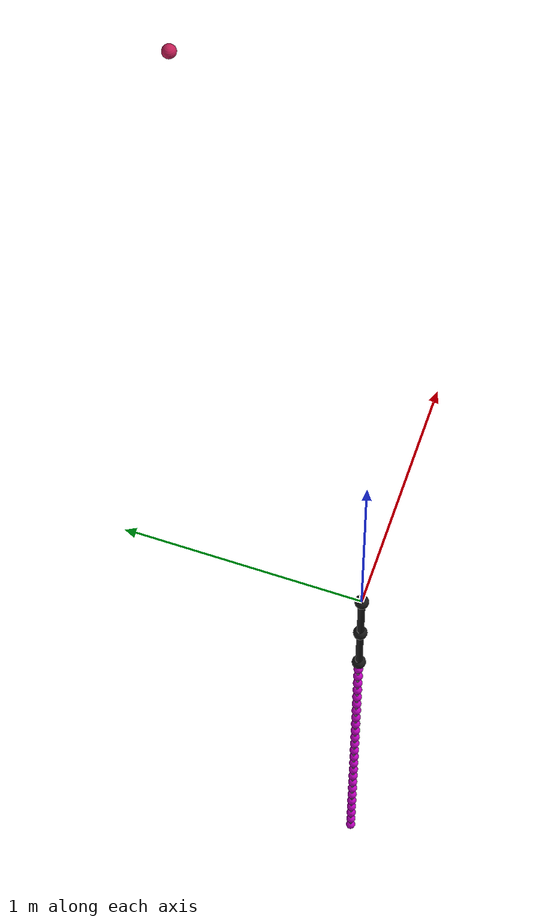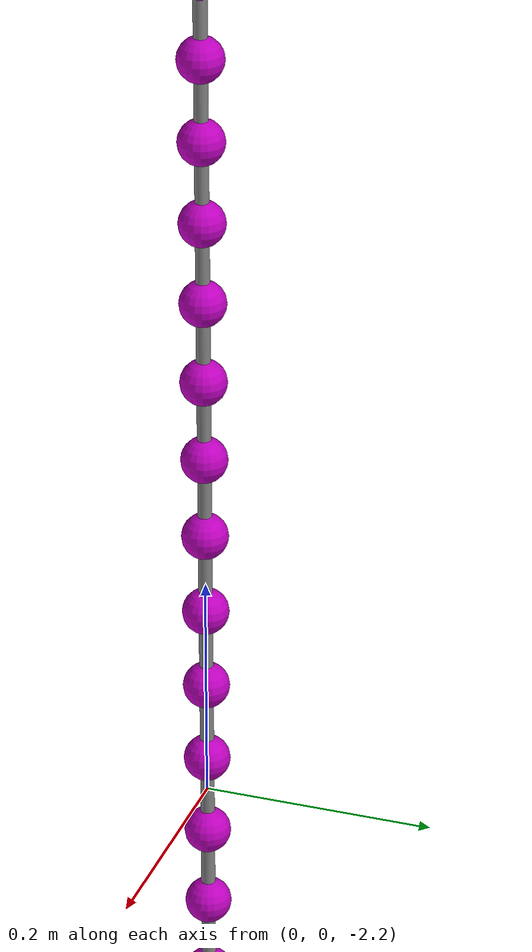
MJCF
<mujoco model="1_3D_model_w_N25">
  <compiler inertiafromgeom="auto" angle="radian" />
   <option timestep="0.0001" iterations="50" solver="PGS" integrator="Euler" gravity="0 0 -9.81" collision="predefined">
     <flag energy="enable" />
   </option>
   <asset>
		 <texture type="skybox" builtin="checker" rgb1="1 1 1" rgb2="1 1 1" width="200" height="200"  />

		 <material name="JointColor" 		 rgba="0.1 0.1 0.1 1" />
		 <material name="LimbColor" 		 rgba="0.1 0.1 0.1 1" />
		 <material name="pointMassColor" rgba="0.75 0.0 0.75 1" />

		 <material name="RefMassColor" 	 rgba="0.2 0.9 0.1 1.0" />

  </asset>

	<!-- Excluding the 5 bodies from the tip of the whip for target contact -->

	<visual>
		<global glow="1.0" fovy="45" ipd="0.0"/>
		<headlight specular="0.0 0.0 0.0" diffuse="1.0 1.0 1.0"/>
	</visual>

   <worldbody>
     <body name="cameramover" mocap="true" pos="0 0 0">
        <camera name="mycamera" pos="0.0 2.0 2.0" euler="1.5707 0 0" />
      </body>

		<body name="body_upper_arm" pos="0 0 0" euler="0 0 0">
			<site name='site_upper_arm_start' pos='0 0 0' />
			<inertial pos="0 0 -0.129" mass="1.595" diaginertia="0.011917 0.011937 0.001325" />
			 <joint name="joint_shoulder_flex_ext" ref="0" type="hinge" stiffness="0" pos = "0 0 0" axis = "0 -1 0" />
			 <joint name='joint_shoulder_add_abd' ref='0'  type='hinge' stiffness='0' pos='0 0 0' axis='-1 0 0' />
			 <joint name='joint_shoulder_med_lat' ref='0'  type='hinge' stiffness='0' pos='0 0 0' axis=' 0 0 1' />
			 <geom name="geom_shoulder" type="sphere" pos="0 0 0" material="JointColor" size="0.0294" mass="0" />
			 <geom type="cylinder" fromto="0 0 0 0 0 -0.294" material="LimbColor" mass="0" size="0.0147" />
			 <site name="site_upper_arm_COM" pos="0 0 -0.129" />
			 <site name='site_upper_arm_end' pos='0 0 -0.294' />

			 <!-- ================ FORE ARM START ================ -->
			 <body name="body_fore_arm" pos="0 0 -0.294" euler="0 0 0">
  	 			 <site name='site_fore_arm_start' pos='0 0 0' />
				   <joint name="joint_elbow" ref="0" type="hinge" stiffness="0" pos="0 0 0" axis="0 -1 0" />
				   <inertial pos="0 0 -0.112" mass="0.869" diaginertia="0.004765 0.004855 0.000472" />
				   <geom name="geom_elbow" type="sphere" pos="0 0 0" material="JointColor" size="0.0294" mass="0" />
			     <geom type="cylinder" fromto="0 0 0 0 0 -0.291" material="LimbColor" mass="0" size="0.0147" />
				   <site name="site_fore_arm_COM" pos="0 0 -0.112" />
				   <geom name="geom_EE" type="sphere" pos="0 0 -0.291" material="JointColor" size="0.0294" mass="0" />
        	      <site name='site_whip_COM' pos='0 0 -0.291' />
        	      <site name='site_fore_arm_end' pos='0 0 -0.291' />

          <body name="body_whip_node1" euler="0 0 0" pos="0 0 -0.291">
              <joint name="joint_whip_node1_X" type="hinge" axis="1  0 0" pos="0 0 0" springref="0" stiffness="0" damping="0" />
              <joint name="joint_whip_node1_Y" type="hinge" axis="0 -1 0" pos="0 0 0" springref="0" stiffness="0" damping="0" />
               <geom type="cylinder" fromto="0 0 0 0 0 -0.0720" size="0.0060000" mass="0" />
               <geom name="geom_whip_node1" type="sphere" material="pointMassColor" pos="0 0 -0.0720" size="0.0200000" mass="0.0120000" />
               <body name="body_whip_node2" euler="0 0 0" pos="0 0 -0.0720">
                 <joint name="joint_whip_node2_X" type="hinge" axis="1  0 0" pos="0 0 0" springref="0" stiffness="0.242" damping="0.092" />
                 <joint name="joint_whip_node2_Y" type="hinge" axis="0 -1 0" pos="0 0 0" springref="0" stiffness="0.242" damping="0.092" />
                  <geom type="cylinder" fromto="0 0 0 0 0 -0.0720" size="0.0060000" mass="0" />
                  <geom name="geom_whip_node2" type="sphere" material="pointMassColor" pos="0 0 -0.0720" size="0.0200000" mass="0.0120000" />
                  <body name="body_whip_node3" euler="0 0 0" pos="0 0 -0.0720">
                    <joint name="joint_whip_node3_X" type="hinge" axis="1  0 0" pos="0 0 0" springref="0" stiffness="0.242" damping="0.092" />
                    <joint name="joint_whip_node3_Y" type="hinge" axis="0 -1 0" pos="0 0 0" springref="0" stiffness="0.242" damping="0.092" />
                     <geom type="cylinder" fromto="0 0 0 0 0 -0.0720" size="0.0060000" mass="0" />
                     <geom name="geom_whip_node3" type="sphere" material="pointMassColor" pos="0 0 -0.0720" size="0.0200000" mass="0.0120000" />
                     <body name="body_whip_node4" euler="0 0 0" pos="0 0 -0.0720">
                       <joint name="joint_whip_node4_X" type="hinge" axis="1  0 0" pos="0 0 0" springref="0" stiffness="0.242" damping="0.092" />
                       <joint name="joint_whip_node4_Y" type="hinge" axis="0 -1 0" pos="0 0 0" springref="0" stiffness="0.242" damping="0.092" />
                        <geom type="cylinder" fromto="0 0 0 0 0 -0.0720" size="0.0060000" mass="0" />
                        <geom name="geom_whip_node4" type="sphere" material="pointMassColor" pos="0 0 -0.0720" size="0.0200000" mass="0.0120000" />
                        <body name="body_whip_node5" euler="0 0 0" pos="0 0 -0.0720">
                          <joint name="joint_whip_node5_X" type="hinge" axis="1  0 0" pos="0 0 0" springref="0" stiffness="0.242" damping="0.092" />
                          <joint name="joint_whip_node5_Y" type="hinge" axis="0 -1 0" pos="0 0 0" springref="0" stiffness="0.242" damping="0.092" />
                           <geom type="cylinder" fromto="0 0 0 0 0 -0.0720" size="0.0060000" mass="0" />
                           <geom name="geom_whip_node5" type="sphere" material="pointMassColor" pos="0 0 -0.0720" size="0.0200000" mass="0.0120000" />
                           <body name="body_whip_node6" euler="0 0 0" pos="0 0 -0.0720">
                             <joint name="joint_whip_node6_X" type="hinge" axis="1  0 0" pos="0 0 0" springref="0" stiffness="0.242" damping="0.092" />
                             <joint name="joint_whip_node6_Y" type="hinge" axis="0 -1 0" pos="0 0 0" springref="0" stiffness="0.242" damping="0.092" />
                              <geom type="cylinder" fromto="0 0 0 0 0 -0.0720" size="0.0060000" mass="0" />
                              <geom name="geom_whip_node6" type="sphere" material="pointMassColor" pos="0 0 -0.0720" size="0.0200000" mass="0.0120000" />
                              <body name="body_whip_node7" euler="0 0 0" pos="0 0 -0.0720">
                                <joint name="joint_whip_node7_X" type="hinge" axis="1  0 0" pos="0 0 0" springref="0" stiffness="0.242" damping="0.092" />
                                <joint name="joint_whip_node7_Y" type="hinge" axis="0 -1 0" pos="0 0 0" springref="0" stiffness="0.242" damping="0.092" />
                                 <geom type="cylinder" fromto="0 0 0 0 0 -0.0720" size="0.0060000" mass="0" />
                                 <geom name="geom_whip_node7" type="sphere" material="pointMassColor" pos="0 0 -0.0720" size="0.0200000" mass="0.0120000" />
                                 <body name="body_whip_node8" euler="0 0 0" pos="0 0 -0.0720">
                                   <joint name="joint_whip_node8_X" type="hinge" axis="1  0 0" pos="0 0 0" springref="0" stiffness="0.242" damping="0.092" />
                                   <joint name="joint_whip_node8_Y" type="hinge" axis="0 -1 0" pos="0 0 0" springref="0" stiffness="0.242" damping="0.092" />
                                    <geom type="cylinder" fromto="0 0 0 0 0 -0.0720" size="0.0060000" mass="0" />
                                    <geom name="geom_whip_node8" type="sphere" material="pointMassColor" pos="0 0 -0.0720" size="0.0200000" mass="0.0120000" />
                                    <body name="body_whip_node9" euler="0 0 0" pos="0 0 -0.0720">
                                      <joint name="joint_whip_node9_X" type="hinge" axis="1  0 0" pos="0 0 0" springref="0" stiffness="0.242" damping="0.092" />
                                      <joint name="joint_whip_node9_Y" type="hinge" axis="0 -1 0" pos="0 0 0" springref="0" stiffness="0.242" damping="0.092" />
                                       <geom type="cylinder" fromto="0 0 0 0 0 -0.0720" size="0.0060000" mass="0" />
                                       <geom name="geom_whip_node9" type="sphere" material="pointMassColor" pos="0 0 -0.0720" size="0.0200000" mass="0.0120000" />
                                       <body name="body_whip_node10" euler="0 0 0" pos="0 0 -0.0720">
                                         <joint name="joint_whip_node10_X" type="hinge" axis="1  0 0" pos="0 0 0" springref="0" stiffness="0.242" damping="0.092" />
                                         <joint name="joint_whip_node10_Y" type="hinge" axis="0 -1 0" pos="0 0 0" springref="0" stiffness="0.242" damping="0.092" />
                                          <geom type="cylinder" fromto="0 0 0 0 0 -0.0720" size="0.0060000" mass="0" />
                                          <geom name="geom_whip_node10" type="sphere" material="pointMassColor" pos="0 0 -0.0720" size="0.0200000" mass="0.0120000" />
                                          <body name="body_whip_node11" euler="0 0 0" pos="0 0 -0.0720">
                                            <joint name="joint_whip_node11_X" type="hinge" axis="1  0 0" pos="0 0 0" springref="0" stiffness="0.242" damping="0.092" />
                                            <joint name="joint_whip_node11_Y" type="hinge" axis="0 -1 0" pos="0 0 0" springref="0" stiffness="0.242" damping="0.092" />
                                             <geom type="cylinder" fromto="0 0 0 0 0 -0.0720" size="0.0060000" mass="0" />
                                             <geom name="geom_whip_node11" type="sphere" material="pointMassColor" pos="0 0 -0.0720" size="0.0200000" mass="0.0120000" />
                                             <body name="body_whip_node12" euler="0 0 0" pos="0 0 -0.0720">
                                               <joint name="joint_whip_node12_X" type="hinge" axis="1  0 0" pos="0 0 0" springref="0" stiffness="0.242" damping="0.092" />
                                               <joint name="joint_whip_node12_Y" type="hinge" axis="0 -1 0" pos="0 0 0" springref="0" stiffness="0.242" damping="0.092" />
                                                <geom type="cylinder" fromto="0 0 0 0 0 -0.0720" size="0.0060000" mass="0" />
                                                <geom name="geom_whip_node12" type="sphere" material="pointMassColor" pos="0 0 -0.0720" size="0.0200000" mass="0.0120000" />
                                                <body name="body_whip_node13" euler="0 0 0" pos="0 0 -0.0720">
                                                  <joint name="joint_whip_node13_X" type="hinge" axis="1  0 0" pos="0 0 0" springref="0" stiffness="0.242" damping="0.092" />
                                                  <joint name="joint_whip_node13_Y" type="hinge" axis="0 -1 0" pos="0 0 0" springref="0" stiffness="0.242" damping="0.092" />
                                                   <geom type="cylinder" fromto="0 0 0 0 0 -0.0720" size="0.0060000" mass="0" />
                                                   <geom name="geom_whip_node13" type="sphere" material="pointMassColor" pos="0 0 -0.0720" size="0.0200000" mass="0.0120000" />
                                                   <body name="body_whip_node14" euler="0 0 0" pos="0 0 -0.0720">
                                                     <joint name="joint_whip_node14_X" type="hinge" axis="1  0 0" pos="0 0 0" springref="0" stiffness="0.242" damping="0.092" />
                                                     <joint name="joint_whip_node14_Y" type="hinge" axis="0 -1 0" pos="0 0 0" springref="0" stiffness="0.242" damping="0.092" />
                                                      <geom type="cylinder" fromto="0 0 0 0 0 -0.0720" size="0.0060000" mass="0" />
                                                      <geom name="geom_whip_node14" type="sphere" material="pointMassColor" pos="0 0 -0.0720" size="0.0200000" mass="0.0120000" />
                                                      <body name="body_whip_node15" euler="0 0 0" pos="0 0 -0.0720">
                                                        <joint name="joint_whip_node15_X" type="hinge" axis="1  0 0" pos="0 0 0" springref="0" stiffness="0.242" damping="0.092" />
                                                        <joint name="joint_whip_node15_Y" type="hinge" axis="0 -1 0" pos="0 0 0" springref="0" stiffness="0.242" damping="0.092" />
                                                         <geom type="cylinder" fromto="0 0 0 0 0 -0.0720" size="0.0060000" mass="0" />
                                                         <geom name="geom_whip_node15" type="sphere" material="pointMassColor" pos="0 0 -0.0720" size="0.0200000" mass="0.0120000" />
                                                         <body name="body_whip_node16" euler="0 0 0" pos="0 0 -0.0720">
                                                           <joint name="joint_whip_node16_X" type="hinge" axis="1  0 0" pos="0 0 0" springref="0" stiffness="0.242" damping="0.092" />
                                                           <joint name="joint_whip_node16_Y" type="hinge" axis="0 -1 0" pos="0 0 0" springref="0" stiffness="0.242" damping="0.092" />
                                                            <geom type="cylinder" fromto="0 0 0 0 0 -0.0720" size="0.0060000" mass="0" />
                                                            <geom name="geom_whip_node16" type="sphere" material="pointMassColor" pos="0 0 -0.0720" size="0.0200000" mass="0.0120000" />
                                                            <body name="body_whip_node17" euler="0 0 0" pos="0 0 -0.0720">
                                                              <joint name="joint_whip_node17_X" type="hinge" axis="1  0 0" pos="0 0 0" springref="0" stiffness="0.242" damping="0.092" />
                                                              <joint name="joint_whip_node17_Y" type="hinge" axis="0 -1 0" pos="0 0 0" springref="0" stiffness="0.242" damping="0.092" />
                                                               <geom type="cylinder" fromto="0 0 0 0 0 -0.0720" size="0.0060000" mass="0" />
                                                               <geom name="geom_whip_node17" type="sphere" material="pointMassColor" pos="0 0 -0.0720" size="0.0200000" mass="0.0120000" />
                                                               <body name="body_whip_node18" euler="0 0 0" pos="0 0 -0.0720">
                                                                 <joint name="joint_whip_node18_X" type="hinge" axis="1  0 0" pos="0 0 0" springref="0" stiffness="0.242" damping="0.092" />
                                                                 <joint name="joint_whip_node18_Y" type="hinge" axis="0 -1 0" pos="0 0 0" springref="0" stiffness="0.242" damping="0.092" />
                                                                  <geom type="cylinder" fromto="0 0 0 0 0 -0.0720" size="0.0060000" mass="0" />
                                                                  <geom name="geom_whip_node18" type="sphere" material="pointMassColor" pos="0 0 -0.0720" size="0.0200000" mass="0.0120000" />
                                                                  <body name="body_whip_node19" euler="0 0 0" pos="0 0 -0.0720">
                                                                    <joint name="joint_whip_node19_X" type="hinge" axis="1  0 0" pos="0 0 0" springref="0" stiffness="0.242" damping="0.092" />
                                                                    <joint name="joint_whip_node19_Y" type="hinge" axis="0 -1 0" pos="0 0 0" springref="0" stiffness="0.242" damping="0.092" />
                                                                     <geom type="cylinder" fromto="0 0 0 0 0 -0.0720" size="0.0060000" mass="0" />
                                                                     <geom name="geom_whip_node19" type="sphere" material="pointMassColor" pos="0 0 -0.0720" size="0.0200000" mass="0.0120000" />
                                                                     <body name="body_whip_node20" euler="0 0 0" pos="0 0 -0.0720">
                                                                       <joint name="joint_whip_node20_X" type="hinge" axis="1  0 0" pos="0 0 0" springref="0" stiffness="0.242" damping="0.092" />
                                                                       <joint name="joint_whip_node20_Y" type="hinge" axis="0 -1 0" pos="0 0 0" springref="0" stiffness="0.242" damping="0.092" />
                                                                        <geom type="cylinder" fromto="0 0 0 0 0 -0.0720" size="0.0060000" mass="0" />
                                                                        <geom name="geom_whip_node20" type="sphere" material="pointMassColor" pos="0 0 -0.0720" size="0.0200000" mass="0.0120000" />
                                                                        <body name="body_whip_node21" euler="0 0 0" pos="0 0 -0.0720">
                                                                          <joint name="joint_whip_node21_X" type="hinge" axis="1  0 0" pos="0 0 0" springref="0" stiffness="0.242" damping="0.092" />
                                                                          <joint name="joint_whip_node21_Y" type="hinge" axis="0 -1 0" pos="0 0 0" springref="0" stiffness="0.242" damping="0.092" />
                                                                           <geom type="cylinder" fromto="0 0 0 0 0 -0.0720" size="0.0060000" mass="0" />
                                                                           <geom name="geom_whip_node21" type="sphere" material="pointMassColor" pos="0 0 -0.0720" size="0.0200000" mass="0.0120000" />
                                                                           <body name="body_whip_node22" euler="0 0 0" pos="0 0 -0.0720">
                                                                             <joint name="joint_whip_node22_X" type="hinge" axis="1  0 0" pos="0 0 0" springref="0" stiffness="0.242" damping="0.092" />
                                                                             <joint name="joint_whip_node22_Y" type="hinge" axis="0 -1 0" pos="0 0 0" springref="0" stiffness="0.242" damping="0.092" />
                                                                              <geom type="cylinder" fromto="0 0 0 0 0 -0.0720" size="0.0060000" mass="0" />
                                                                              <geom name="geom_whip_node22" type="sphere" material="pointMassColor" pos="0 0 -0.0720" size="0.0200000" mass="0.0120000" />
                                                                              <body name="body_whip_node23" euler="0 0 0" pos="0 0 -0.0720">
                                                                                <joint name="joint_whip_node23_X" type="hinge" axis="1  0 0" pos="0 0 0" springref="0" stiffness="0.242" damping="0.092" />
                                                                                <joint name="joint_whip_node23_Y" type="hinge" axis="0 -1 0" pos="0 0 0" springref="0" stiffness="0.242" damping="0.092" />
                                                                                 <geom type="cylinder" fromto="0 0 0 0 0 -0.0720" size="0.0060000" mass="0" />
                                                                                 <geom name="geom_whip_node23" type="sphere" material="pointMassColor" pos="0 0 -0.0720" size="0.0200000" mass="0.0120000" />
                                                                                 <body name="body_whip_node24" euler="0 0 0" pos="0 0 -0.0720">
                                                                                   <joint name="joint_whip_node24_X" type="hinge" axis="1  0 0" pos="0 0 0" springref="0" stiffness="0.242" damping="0.092" />
                                                                                   <joint name="joint_whip_node24_Y" type="hinge" axis="0 -1 0" pos="0 0 0" springref="0" stiffness="0.242" damping="0.092" />
                                                                                    <geom type="cylinder" fromto="0 0 0 0 0 -0.0720" size="0.0060000" mass="0" />
                                                                                    <geom name="geom_whip_node24" type="sphere" material="pointMassColor" pos="0 0 -0.0720" size="0.0200000" mass="0.0120000" />
                                                                                    <body name="body_whip_node25" euler="0 0 0" pos="0 0 -0.0720">
                                                                                      <joint name="joint_whip_node25_X" type="hinge" axis="1  0 0" pos="0 0 0" springref="0" stiffness="0.242" damping="0.092" />
                                                                                      <joint name="joint_whip_node25_Y" type="hinge" axis="0 -1 0" pos="0 0 0" springref="0" stiffness="0.242" damping="0.092" />
                                                                                       <geom type="cylinder" fromto="0 0 0 0 0 -0.0720" size="0.0060000" mass="0" />
                                                                                       <geom name="geom_whip_node25" type="sphere" material="pointMassColor" pos="0 0 -0.0720" size="0.0200000" mass="0.0120000" />
                                                                                       <site name='site_whip_tip' pos='0 0 -0.0720' />
                                                                                    </body>
                                                                                 </body>
                                                                              </body>
                                                                           </body>
                                                                        </body>
                                                                     </body>
                                                                  </body>
                                                               </body>
                                                            </body>
                                                         </body>
                                                      </body>
                                                   </body>
                                                </body>
                                             </body>
                                          </body>
                                       </body>
                                    </body>
                                 </body>
                              </body>
                           </body>
                        </body>
                     </body>
                  </body>
               </body>
            </body>

         </body>
      </body>

      <geom name="geom_target" type="sphere" pos="1.1925 1.1925 1.68644" rgba="0.7608, 0.1176, 0.3373, 1" mass="0" size="0.03" />

   </worldbody>

   <actuator>
      <motor joint="joint_shoulder_flex_ext" name="motor_shoulder_flex_ext" forcelimited="false" />
      <motor joint="joint_shoulder_add_abd"  name="motor_shoulder_add_abd"  forcelimited="false" />
      <motor joint="joint_shoulder_med_lat"  name="motor_shoulder_med_lat"  forcelimited="false" />
      <motor joint="joint_elbow" 				name="motor_elbow" 				 forcelimited="false" />
   </actuator>
</mujoco>
